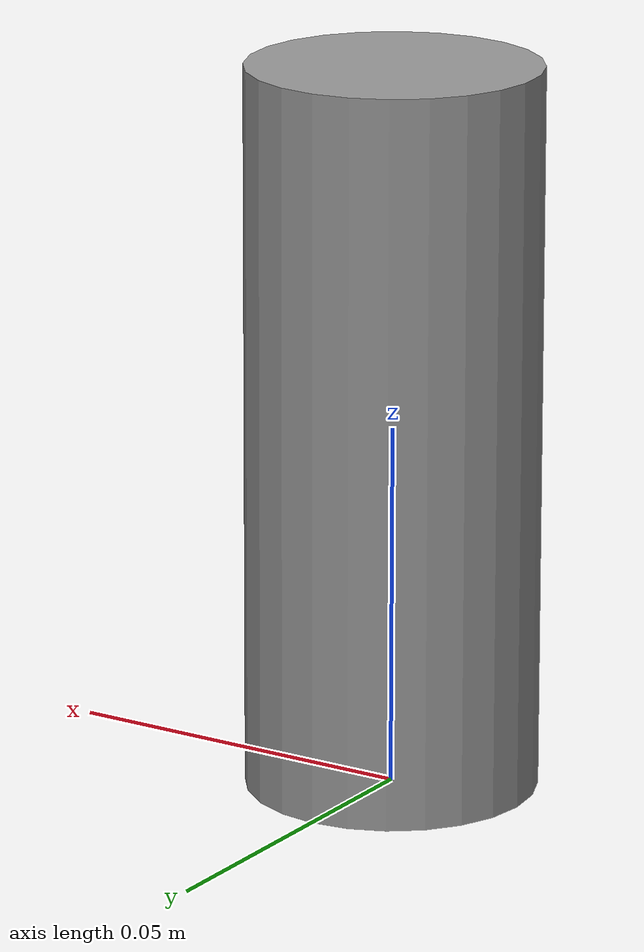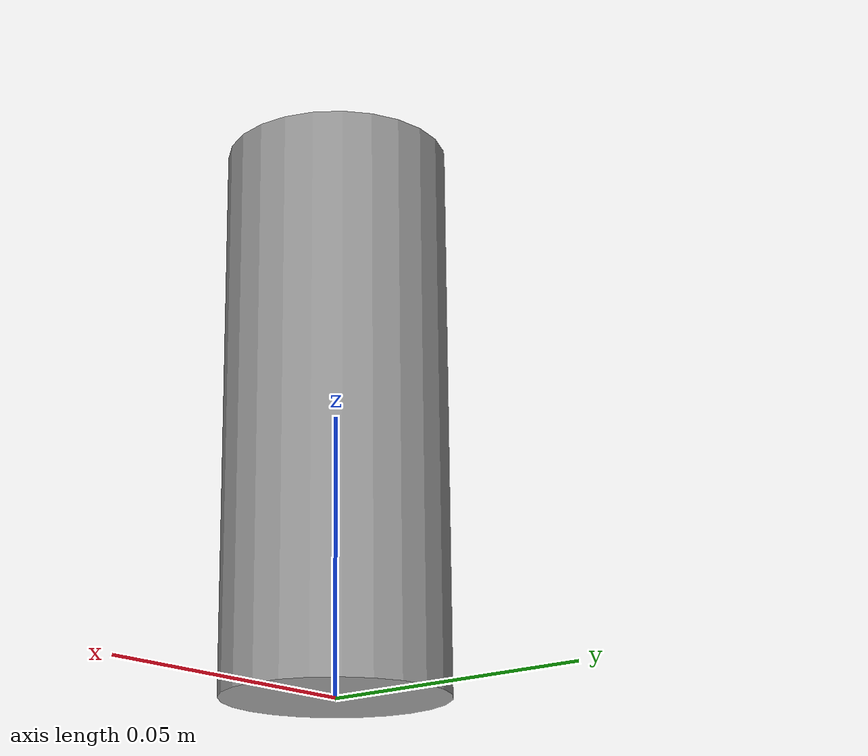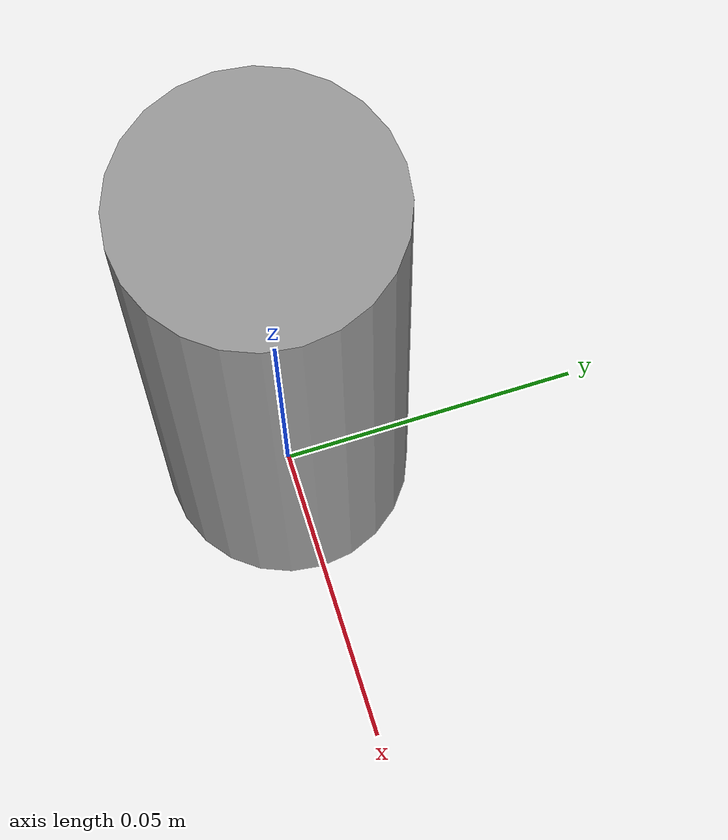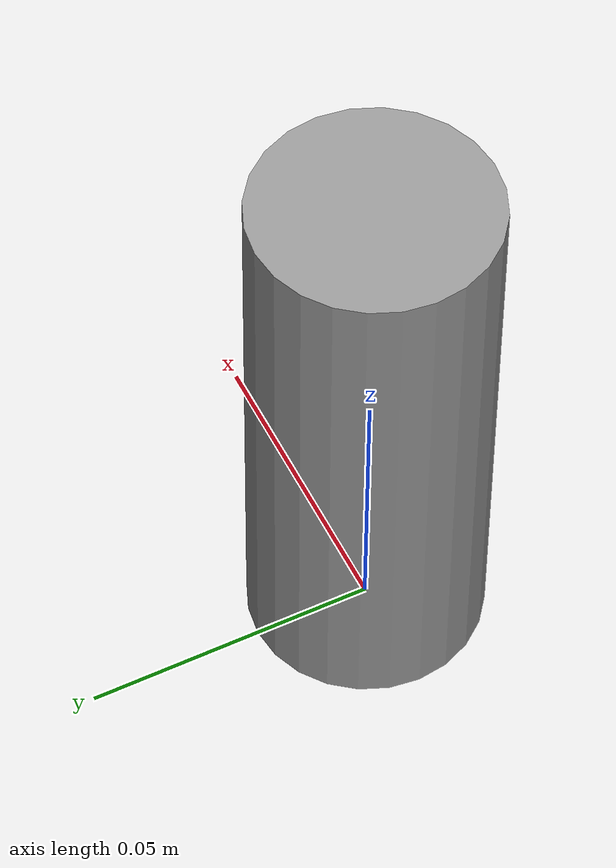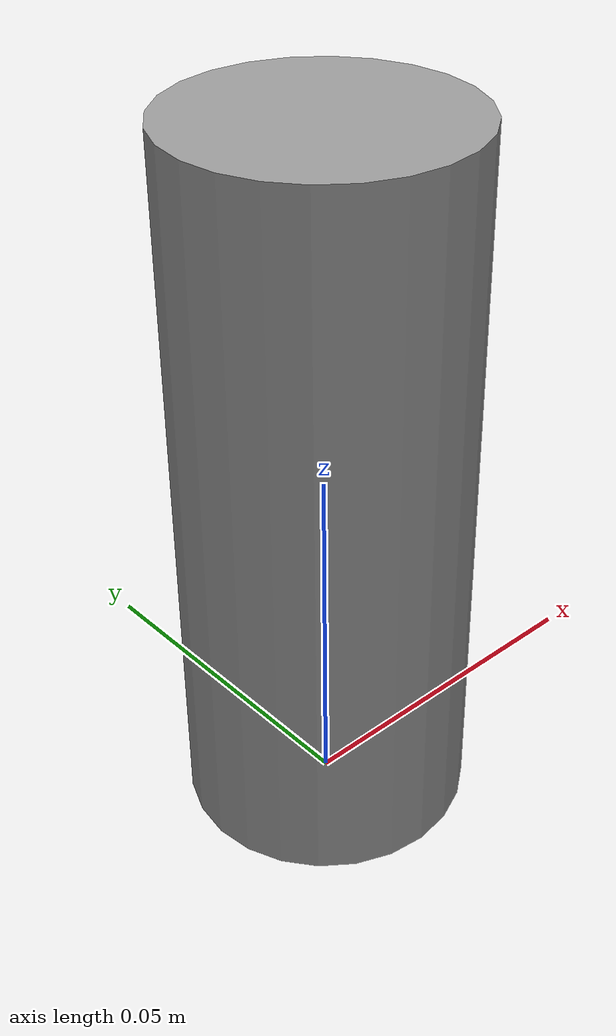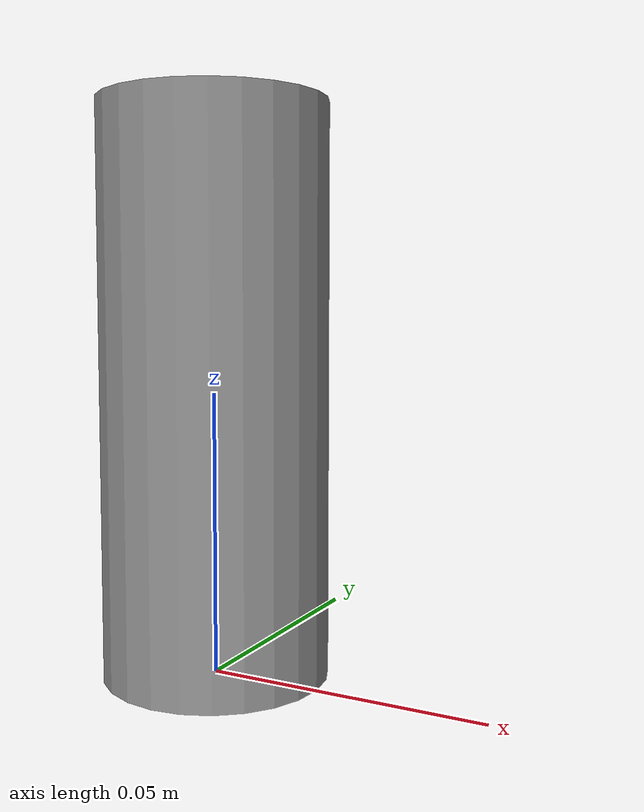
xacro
<?xml version="1.0"?>
<robot name="Upper_leg" xmlns:xacro="http://ros.org/wiki/xacro">

  <!-- Import Macros -->
  <xacro:macro name="cylinder_inertia" params="m r h">
	  <inertia  ixx="${m*(3*r*r+h*h)/12}" ixy = "0" ixz = "0"
	    iyy="${m*(3*r*r+h*h)/12}" iyz = "0"
	    izz="${m*r*r/2}"
	  />
	</xacro:macro>

	<xacro:macro name="box_inertia" params="m x y z">
	  <inertia  ixx="${m*(y*y+z*z)/12}" ixy = "0" ixz = "0"
	    iyy="${m*(x*x+z*z)/12}" iyz = "0"
	    izz="${m*(x*x+z*z)/12}"
	  />
	</xacro:macro>

	<xacro:macro name="sphere_inertia" params="m r">
	  <inertia  ixx="${2*m*r*r/5}" ixy = "0" ixz = "0"
	    iyy="${2*m*r*r/5}" iyz = "0"
	    izz="${2*m*r*r/5}"
	  />
	</xacro:macro>

<!-- legs -->
<xacro:property name="upper_leg_height" value="0.10" />
<xacro:property name="upper_leg_radius" value="0.02" />
<xacro:property name="upper_leg_mass" value="2.0" />

<xacro:property name="sphere_r" value="0.02" />
<xacro:property name="sphere_mass" value="0.02" />

  <!-- Femur -->
  <link name="upper_leg">
    <inertial>
      <origin xyz="0 0 ${upper_leg_height/2}"/>
      <mass value="${upper_leg_mass}" />
      <xacro:cylinder_inertia  m="${upper_leg_mass}" r="${upper_leg_radius}" h="${upper_leg_height}" />
    </inertial>
    <collision>
      <origin xyz="0 0 ${upper_leg_height/2}" rpy="0 0 0" />
      <geometry>
	      <cylinder length="${upper_leg_height}" radius="${upper_leg_radius}"/>
      </geometry>
    </collision>
    <visual>
      <origin xyz="0 0 ${upper_leg_height/2}" rpy="0 0 0" />
      <geometry>
	      <cylinder length="${upper_leg_height}" radius="${upper_leg_radius}"/>
      </geometry>
    <material name="Gray" />
   </visual>
</link>
</robot>
